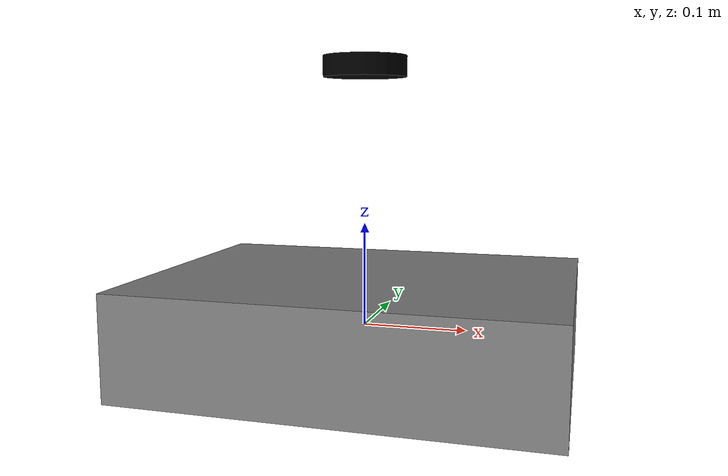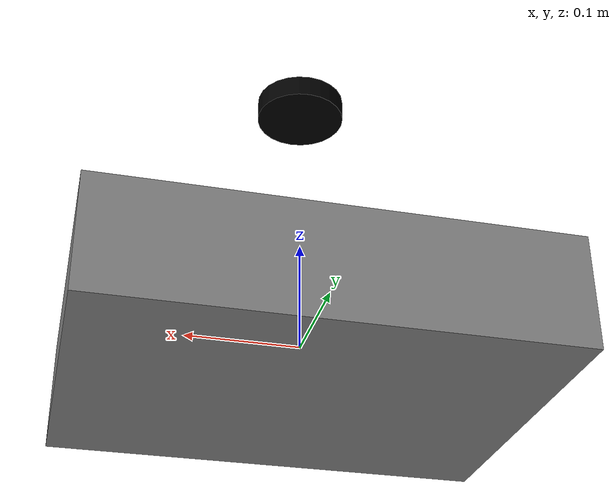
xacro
<?xml version="1.0"?>
<robot name="bumperbot" xmlns:xacro="http://www.ros.org/wiki/xacro">
  <!-- Properties -->
  <xacro:property name="PI" value="3.1415926535897931"/>
  <xacro:property name="base_width" value="0.3"/>
  <xacro:property name="base_length" value="0.4"/>
  <xacro:property name="wheel_radius" value="0.033"/>
  <xacro:property name="wheel_width" value="0.018"/>
  <xacro:property name="caster_radius" value="0.025"/>
  <xacro:property name="laser_height" value="0.25"/>

  <!-- Materials -->
  <material name="black">
    <color rgba="0.0 0.0 0.0 1.0"/>
  </material>
  <material name="gray">
    <color rgba="0.5 0.5 0.5 1.0"/>
  </material>

  <!-- base_footprint -->
  <link name="base_footprint">
    <visual>
      <geometry>
        <cylinder radius="0.001" length="0.001"/>
      </geometry>
    </visual>
  </link>

  <!-- base_link -->
  <link name="base_link">
    <visual>
      <geometry>
        <box size="${base_length} ${base_width} 0.1"/>
      </geometry>
      <material name="gray"/>
    </visual>
    <collision>
      <geometry>
        <box size="${base_length} ${base_width} 0.1"/>
      </geometry>
    </collision>
    <inertial>
      <mass value="5.0"/>
      <origin xyz="0 0 0" rpy="0 0 0"/>
      <inertia ixx="0.1" ixy="0.0" ixz="0.0" iyy="0.1" iyz="0.0" izz="0.1"/>
    </inertial>
  </link>

  <!-- Joint between base_footprint and base_link -->
  <joint name="base_footprint_joint" type="fixed">
    <parent link="base_footprint"/>
    <child link="base_link"/>
  </joint>

  <!-- Wheels and casters (same as before, omitted here for brevity) -->

  <!-- laser_link -->
  <link name="laser_link">
    <visual>
      <geometry>
        <cylinder radius="0.04" length="0.02"/>
      </geometry>
      <material name="black"/>
    </visual>
    <collision>
      <geometry>
        <cylinder radius="0.04" length="0.02"/>
      </geometry>
    </collision>
    <inertial>
      <mass value="0.1"/>
      <origin xyz="0 0 0" rpy="0 0 0"/>
      <inertia ixx="0.0001" ixy="0.0" ixz="0.0" iyy="0.0001" iyz="0.0" izz="0.0001"/>
    </inertial>
  </link>

  <joint name="laser_joint" type="fixed">
    <parent link="base_link"/>
    <child link="laser_link"/>
    <origin xyz="0 0 ${laser_height}" rpy="0 0 0"/>
  </joint>

  <!-- IMU (same as before, omitted for brevity) -->

  <!-- Gazebo plugin for LiDAR sensor -->
  <gazebo reference="laser_link">
    <sensor type="ray" name="laser">
      <pose>0 0 0 0 0 0</pose>
      <visualize>true</visualize>
      <update_rate>10.0</update_rate>
      <ray>
        <scan>
          <horizontal>
            <samples>720</samples>
            <resolution>1</resolution>
            <min_angle>-1.57</min_angle>
            <max_angle>1.57</max_angle>
          </horizontal>
        </scan>
        <range>
          <min>0.12</min>
          <max>3.5</max>
          <resolution>0.01</resolution>
        </range>
      </ray>
      <plugin name="gazebo_ros_laser_controller" filename="libgazebo_ros_ray_sensor.so">
        <ros>
          <remapping>scan:=scan</remapping>
        </ros>
        <topicName>scan</topicName>
        <frameName>laser_link</frameName>
      </plugin>
    </sensor>
  </gazebo>
</robot>
